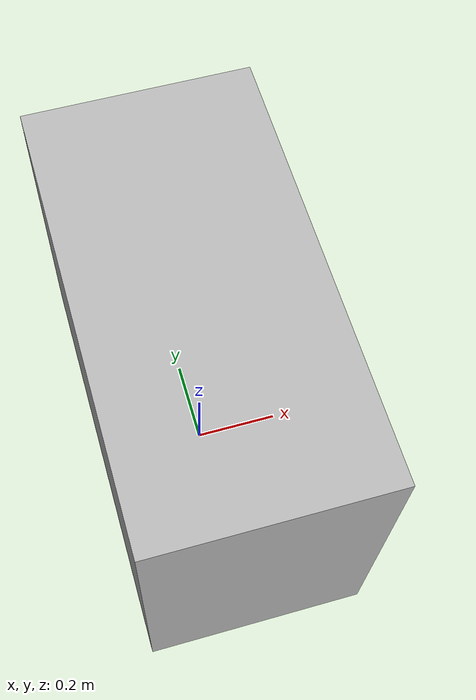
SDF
<?xml version="1.0"?>
<sdf version="1.6">
  <model name="rwc2019/island">
    <link name="1_link">
      <collision name="1_col">
        <geometry>
          <box>
            <size>0.51 1.006 0.753</size>
          </box>
        </geometry>
      </collision>
      <visual name="1_vis">
        <geometry>
          <box>
            <size>0.51 1.006 0.753</size>
          </box>
        </geometry>
      </visual>
      <pose>0.0 0.0 0.3765 0 0 0</pose>
    </link>
    <link name="on_top_of">
      <virtual_volume name="on_top_of_vv">
        <geometry>
          <box>
            <size>0.47 0.946 0.25</size>
          </box>
        </geometry>
        <pose>0.02 0.0 0.898 0 0 0</pose>
      </virtual_volume>
    </link>
    <link name="in_front_of">
      <virtual_volume name="in_front_of_vv">
        <geometry>
          <box>
            <size>0.2 0.50 0.01</size>
          </box>
        </geometry>
        <pose>0.755 0.0 0.005 0 0 0</pose>
      </virtual_volume>
    </link>
    <static>true</static>
  </model>
</sdf>
